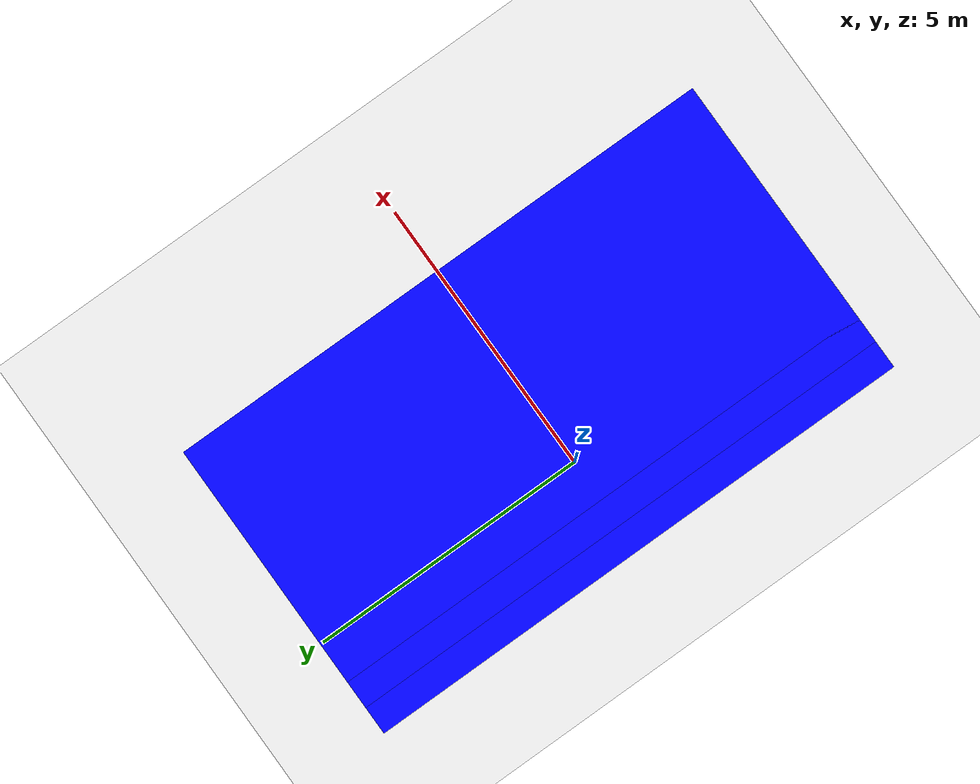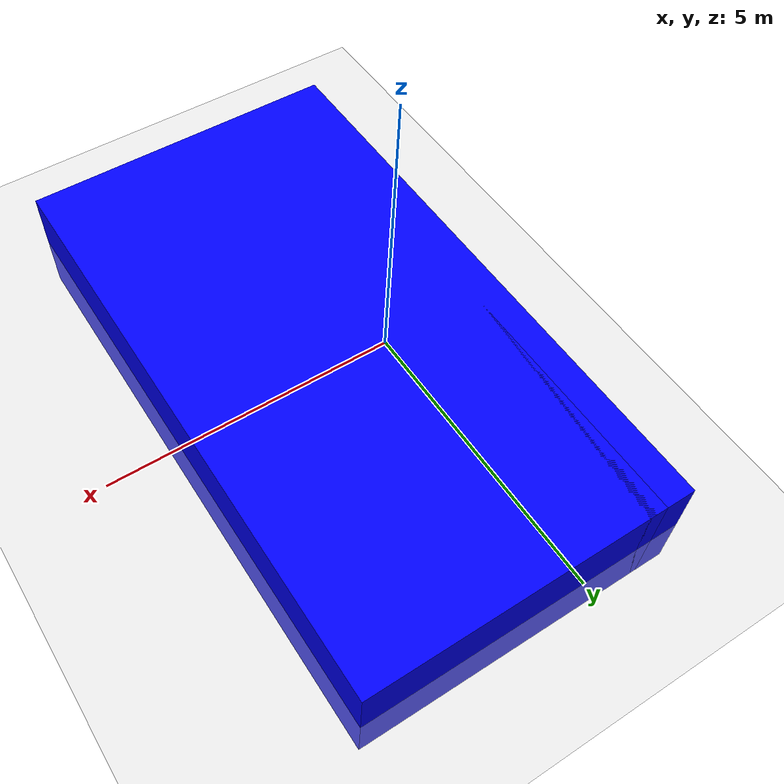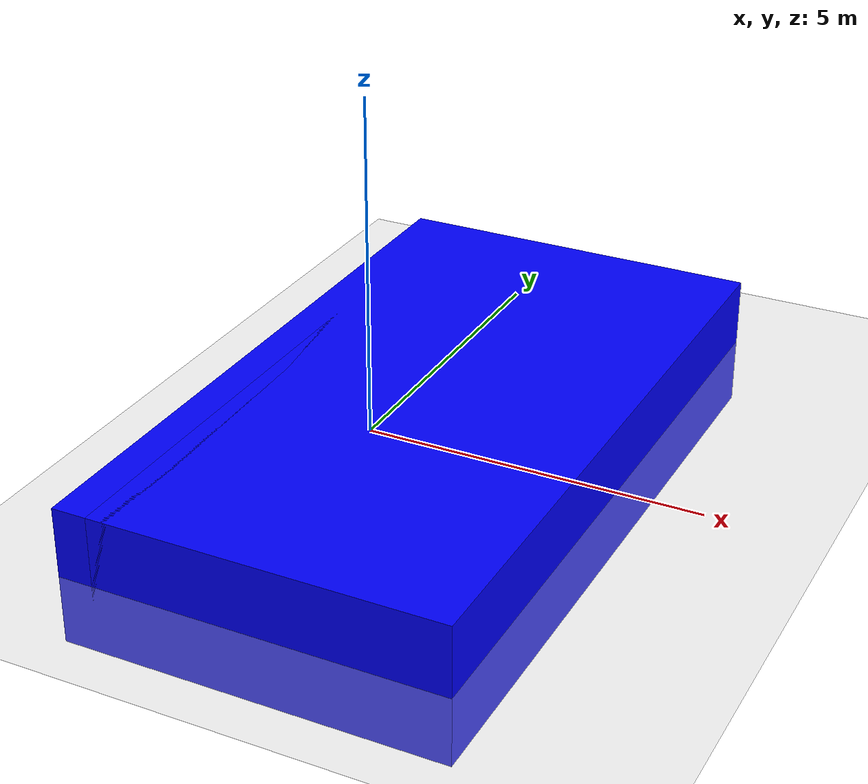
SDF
<sdf version="1.7">
    <world name="empty">
        <physics name="1ms" type="dart">
            <max_step_size>0.001</max_step_size>
            <real_time_factor>1.0</real_time_factor>
            <real_time_update_rate>1000</real_time_update_rate>
        </physics>

        <plugin
            filename="gz-sim-physics-system"
            name="gz::sim::systems::Physics">
        </plugin>
        <plugin
            filename="gz-sim-user-commands-system"
            name="gz::sim::systems::UserCommands">
        </plugin>
        <plugin
            filename="gz-sim-scene-broadcaster-system"
            name="gz::sim::systems::SceneBroadcaster">
        </plugin>
        <plugin
            filename="gz-sim-sensors-system"
            name="gz::sim::systems::Sensors">
            <render_engine>ogre2</render_engine>
        </plugin>
        <plugin
            filename="gz-sim-contact-system"
            name="gz::sim::systems::Contact">
        </plugin>

        <spherical_coordinates>
            <surface_model>EARTH_WGS84</surface_model>
            <latitude_deg>54.904449</latitude_deg>
            <longitude_deg>-1.381450</longitude_deg>
            <elevation>0</elevation>
            <heading_deg>0</heading_deg>
            <magnetic_field>1.7805e-9 1.30e-11 4.6725e-9</magnetic_field>
        </spherical_coordinates>

        <light type="directional" name="sun">
            <cast_shadows>true</cast_shadows>
            <pose>0 0 10 0 0 0</pose>
            <diffuse>0.8 0.8 0.8 1</diffuse>
            <specular>0.2 0.2 0.2 1</specular>
            <attenuation>
                <range>1000</range>
                <constant>0.9</constant>
                <linear>0.01</linear>
                <quadratic>0.001</quadratic>
            </attenuation>
            <direction>-0.5 0.1 -0.9</direction>
        </light>
        <model name='ground_plane'>
            <static>1</static>
            <link name='link'>
                <collision name='collision'>
                    <geometry>
                        <plane>
                            <normal>0 0 1</normal>
                            <size>100 100</size>
                        </plane>
                    </geometry>
                </collision>
                <visual name='visual'>
                    <geometry>
                        <plane>
                            <normal>0 0 1</normal>
                            <size>100 100</size>
                        </plane>
                    </geometry>
                    <material>
                        <ambient>0.8 0.8 0.8 1</ambient>
                        <diffuse>0.8 0.8 0.8 1</diffuse>
                        <specular>0.8 0.8 0.8 1</specular>
                    </material>
                </visual>
            </link>
        </model>

        <model name='wall'>
            <static>true</static>
            <pose>1 0 0 0 0 0</pose>
            <link name='box'>
                <visual name='visual'>
                    <geometry>
                        <box>
                            <size>5.5 10.0 2.0</size>
                        </box>
                    </geometry>
                    <material>
                        <ambient>0.0 0.0 1.0 1</ambient>
                        <diffuse>0.0 0.0 1.0 1</diffuse>
                        <specular>0.0 0.0 1.0 1</specular>
                    </material>
                </visual>
                <collision name='collision'>
                    <geometry>
                        <box>
                            <size>0.5 10.0 2.0</size>
                        </box>
                    </geometry>
                    <surface>
                        <friction>
                        <linear>
                            <friction1>0.3</friction1>
                            <friction2>0.3</friction2>
                        </linear>
                        </friction>
                    </surface>

                </collision>

                <sensor name="wall_contact_sensor" type="contact">
                    <always_on>true</always_on>
                    <update_rate>100</update_rate>
                    <contact>
                      <collision>collision</collision>
                    </contact>
                    <topic>/contact</topic>
                  </sensor>
            </link>
        </model>

        <model name='wall2'>
            <static>true</static>
            <pose>-1 0 0 0 0 0</pose>
            <link name='box'>
                <visual name='visual'>
                    <geometry>
                        <box>
                            <size>0.5 10.0 2.0</size>
                        </box>
                    </geometry>
                    <material>
                        <ambient>0.0 0.0 1.0 1</ambient>
                        <diffuse>0.0 0.0 1.0 1</diffuse>
                        <specular>0.0 0.0 1.0 1</specular>
                    </material>
                </visual>
                <collision name='wall_2_collision'>
                    <geometry>
                        <box>
                            <size>0.5 10.0 2.0</size>
                        </box>
                    </geometry>
                    <surface>
                        <friction>
                        <linear>
                            <friction1>0.3</friction1>
                            <friction2>0.3</friction2>
                        </linear>
                        </friction>
                    </surface>

                </collision>

                <sensor name="wall_contact_sensor" type="contact">
                    <always_on>true</always_on>
                    <update_rate>100</update_rate>
                    <contact>
                      <collision>wall_2_collision</collision>
                    </contact>
                    <topic>/contact</topic>
                  </sensor>
            </link>
        </model>

    </world>

</sdf>
